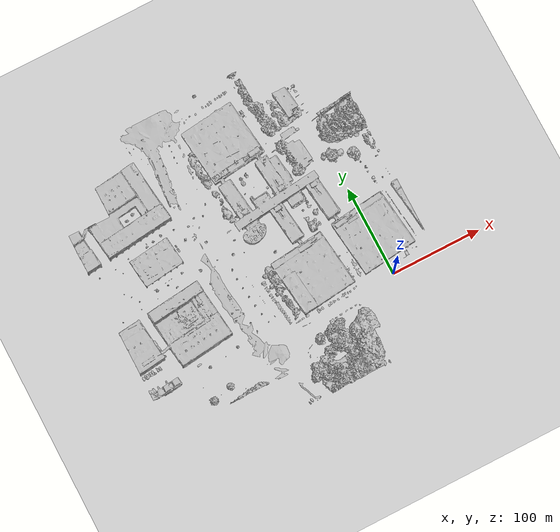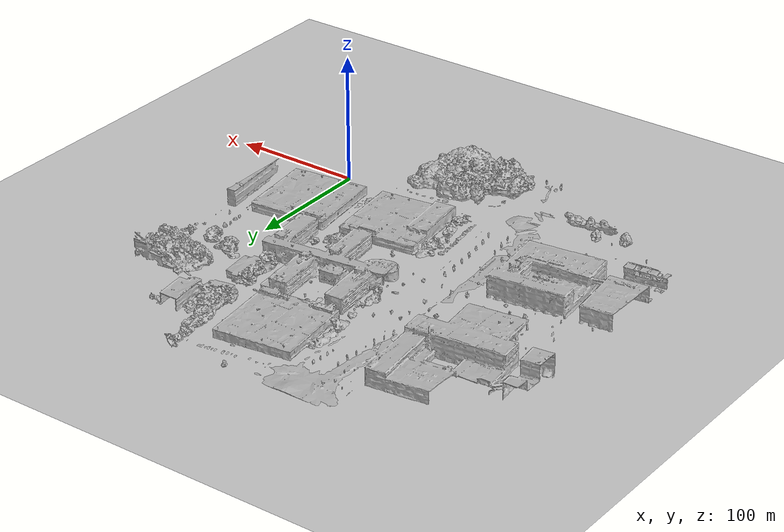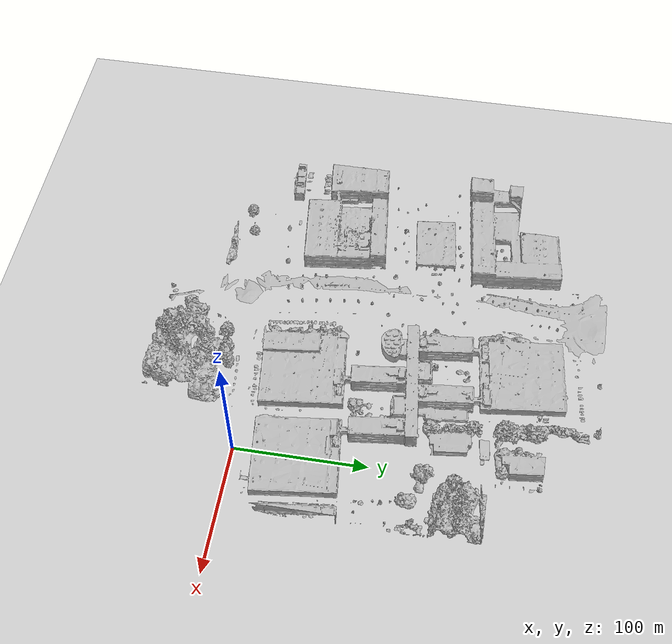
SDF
<?xml version="1.0" encoding="UTF-8"?>
<sdf version="1.9">
  <world name="garbsen">
    <physics type="ode">
      <max_step_size>0.004</max_step_size>
      <real_time_factor>1.0</real_time_factor>
      <real_time_update_rate>250</real_time_update_rate>
    </physics>
    <gravity>0 0 -9.8</gravity>
    <magnetic_field>6e-06 2.3e-05 -4.2e-05</magnetic_field>
    <atmosphere type="adiabatic"/>
    <scene>
      <grid>false</grid>
      <ambient>0.4 0.4 0.4 1</ambient>
      <background>0.7 0.7 0.7 1</background>
      <shadows>true</shadows>
    </scene>
    <model name="simple_model">
      <static>true</static>
      <link name="link">
        <visual name="visual">
          <geometry>
            <mesh>
              <uri>meshes/Uni.glb</uri>
            </mesh>
          </geometry>

        </visual>
        <collision name="collision">
          <geometry>
            <mesh>
              <uri>meshes/Collision.stl</uri>
            </mesh>
          </geometry>
        </collision>
        <pose>0 0 0 0 0 0</pose>
      </link>
      <pose>0 0 0 0 0 0</pose>
    </model>
    <model name="ground_plane">
      <static>true</static>
      <link name="link">
        <collision name="collision">
          <geometry>
            <plane>
              <normal>0 0 1</normal>
              <size>1 1</size>
            </plane>
          </geometry>
          <surface>
            <friction>
              <ode/>
            </friction>
            <bounce/>
            <contact/>
          </surface>
        </collision>
        <visual name="visual">
          <geometry>
            <plane>
              <normal>0 0 1</normal>
              <size>500 500</size>
            </plane>
          </geometry>
          <material>
            <ambient>0.8 0.8 0.8 1</ambient>
            <diffuse>0.8 0.8 0.8 1</diffuse>
            <specular>0.8 0.8 0.8 1</specular>
          </material>
        </visual>
        <pose>0 0 0 0 -0 0</pose>
        <inertial>
          <pose>0 0 0 0 -0 0</pose>
          <mass>1</mass>
          <inertia>
            <ixx>1</ixx>
            <ixy>0</ixy>
            <ixz>0</ixz>
            <iyy>1</iyy>
            <iyz>0</iyz>
            <izz>1</izz>
          </inertia>
        </inertial>
        <enable_wind>false</enable_wind>
      </link>
      <pose>0 0 0 0 -0 0</pose>
      <self_collide>false</self_collide>
    </model>
    <light name="sunUTC" type="directional">
      <pose>0 0 500 0 -0 0</pose>
      <cast_shadows>true</cast_shadows>
      <intensity>1</intensity>
      <direction>0.001 0.625 -0.78</direction>
      <diffuse>0.904 0.904 0.904 1</diffuse>
      <specular>0.271 0.271 0.271 1</specular>
      <attenuation>
        <range>2000</range>
        <linear>0</linear>
        <constant>1</constant>
        <quadratic>0</quadratic>
      </attenuation>
      <spot>
        <inner_angle>0</inner_angle>
        <outer_angle>0</outer_angle>
        <falloff>0</falloff>
      </spot>
    </light>
    <spherical_coordinates>
      <surface_model>EARTH_WGS84</surface_model>
      <world_frame_orientation>ENU</world_frame_orientation>
      <latitude_deg>47.397971057728974</latitude_deg>
      <longitude_deg> 8.546163739800146</longitude_deg>
      <elevation>0</elevation>
    </spherical_coordinates>

    <plugin name="rgl::RGLServerPluginManager" filename="RGLServerPluginManager">
      <do_ignore_entities_in_lidar_link>true</do_ignore_entities_in_lidar_link>
    </plugin>
  </world>
</sdf>
